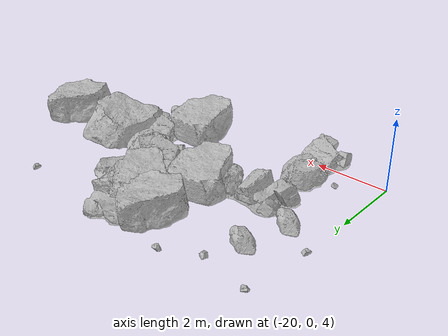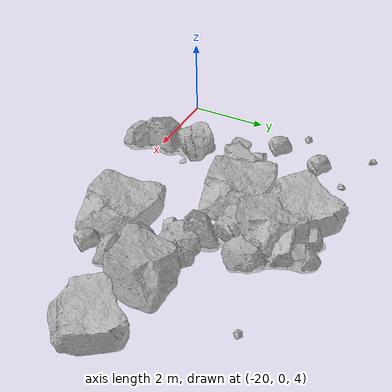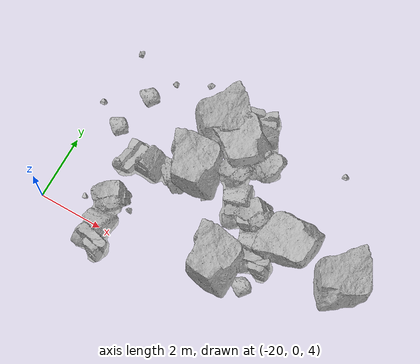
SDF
<sdf version="1.7">
 <world name="marsyard">
  <model name="Rock_3">
   <static>true</static>
   <pose>-12.5866 2.8986 4.0000 0.0000 0.0000 1.7044</pose>
   <link name="link">
    <visual name="visual">
     <geometry><mesh><uri>package://rock_generator/rocks_ws/rock_9/meshes/rock_9.stl</uri></mesh></geometry>
    </visual>
    <collision name="collision">
     <geometry><mesh><uri>package://rock_generator/rocks_ws/rock_9/meshes/rock_9.stl</uri></mesh></geometry>
    </collision>
   </link>
  </model>
  <model name="Rock_30">
   <static>true</static>
   <pose>-19.1105 3.0353 4.0000 0.0000 0.0000 0.2926</pose>
   <link name="link">
    <visual name="visual">
     <geometry><mesh><uri>package://rock_generator/rocks_ws/rock_3/meshes/rock_3.stl</uri></mesh></geometry>
    </visual>
    <collision name="collision">
     <geometry><mesh><uri>package://rock_generator/rocks_ws/rock_3/meshes/rock_3.stl</uri></mesh></geometry>
    </collision>
   </link>
  </model>
  <model name="Rock_70">
   <static>true</static>
   <pose>-16.5224 4.8071 4.0000 0.0000 0.0000 0.0338</pose>
   <link name="link">
    <visual name="visual">
     <geometry><mesh><uri>package://rock_generator/rocks_ws/rock_1/meshes/rock_1.stl</uri></mesh></geometry>
    </visual>
    <collision name="collision">
     <geometry><mesh><uri>package://rock_generator/rocks_ws/rock_1/meshes/rock_1.stl</uri></mesh></geometry>
    </collision>
   </link>
  </model>
  <model name="Rock_97">
   <static>true</static>
   <pose>-17.3370 5.5142 4.0000 0.0000 0.0000 1.4713</pose>
   <link name="link">
    <visual name="visual">
     <geometry><mesh><uri>package://rock_generator/rocks_ws/rock_9/meshes/rock_9.stl</uri></mesh></geometry>
    </visual>
    <collision name="collision">
     <geometry><mesh><uri>package://rock_generator/rocks_ws/rock_9/meshes/rock_9.stl</uri></mesh></geometry>
    </collision>
   </link>
  </model>
  <model name="Rock_132">
   <static>true</static>
   <pose>-15.0006 4.5964 4.0000 0.0000 0.0000 2.2051</pose>
   <link name="link">
    <visual name="visual">
     <geometry><mesh><uri>package://rock_generator/rocks_ws/rock_2/meshes/rock_2.stl</uri></mesh></geometry>
    </visual>
    <collision name="collision">
     <geometry><mesh><uri>package://rock_generator/rocks_ws/rock_2/meshes/rock_2.stl</uri></mesh></geometry>
    </collision>
   </link>
  </model>
  <model name="Rock_161">
   <static>true</static>
   <pose>-19.7115 5.3705 4.0000 0.0000 0.0000 2.2692</pose>
   <link name="link">
    <visual name="visual">
     <geometry><mesh><uri>package://rock_generator/rocks_ws/rock_9/meshes/rock_9.stl</uri></mesh></geometry>
    </visual>
    <collision name="collision">
     <geometry><mesh><uri>package://rock_generator/rocks_ws/rock_9/meshes/rock_9.stl</uri></mesh></geometry>
    </collision>
   </link>
  </model>
  <model name="Rock_168">
   <static>true</static>
   <pose>-18.0848 0.3081 4.0000 0.0000 0.0000 -1.4491</pose>
   <link name="link">
    <visual name="visual">
     <geometry><mesh><uri>package://rock_generator/rocks_ws/rock_2/meshes/rock_2.stl</uri></mesh></geometry>
    </visual>
    <collision name="collision">
     <geometry><mesh><uri>package://rock_generator/rocks_ws/rock_2/meshes/rock_2.stl</uri></mesh></geometry>
    </collision>
   </link>
  </model>
  <model name="Rock_174">
   <static>true</static>
   <pose>-15.7809 2.3304 4.0000 0.0000 0.0000 -2.2014</pose>
   <link name="link">
    <visual name="visual">
     <geometry><mesh><uri>package://rock_generator/rocks_ws/rock_7/meshes/rock_7.stl</uri></mesh></geometry>
    </visual>
    <collision name="collision">
     <geometry><mesh><uri>package://rock_generator/rocks_ws/rock_7/meshes/rock_7.stl</uri></mesh></geometry>
    </collision>
   </link>
  </model>
  <model name="Rock_194">
   <static>true</static>
   <pose>-12.4096 4.9861 4.0000 0.0000 0.0000 -1.5793</pose>
   <link name="link">
    <visual name="visual">
     <geometry><mesh><uri>package://rock_generator/rocks_ws/rock_9/meshes/rock_9.stl</uri></mesh></geometry>
    </visual>
    <collision name="collision">
     <geometry><mesh><uri>package://rock_generator/rocks_ws/rock_9/meshes/rock_9.stl</uri></mesh></geometry>
    </collision>
   </link>
  </model>
  <model name="Rock_195">
   <static>true</static>
   <pose>-14.7121 0.8049 4.0000 0.0000 0.0000 0.7222</pose>
   <link name="link">
    <visual name="visual">
     <geometry><mesh><uri>package://rock_generator/rocks_ws/rock_1/meshes/rock_1.stl</uri></mesh></geometry>
    </visual>
    <collision name="collision">
     <geometry><mesh><uri>package://rock_generator/rocks_ws/rock_1/meshes/rock_1.stl</uri></mesh></geometry>
    </collision>
   </link>
  </model>
  <model name="Rock_200">
   <static>true</static>
   <pose>-12.9343 2.1686 4.0000 0.0000 0.0000 2.2986</pose>
   <link name="link">
    <visual name="visual">
     <geometry><mesh><uri>package://rock_generator/rocks_ws/rock_1/meshes/rock_1.stl</uri></mesh></geometry>
    </visual>
    <collision name="collision">
     <geometry><mesh><uri>package://rock_generator/rocks_ws/rock_1/meshes/rock_1.stl</uri></mesh></geometry>
    </collision>
   </link>
  </model>
  <model name="Rock_243">
   <static>true</static>
   <pose>-18.7758 4.2894 4.0000 0.0000 0.0000 0.4729</pose>
   <link name="link">
    <visual name="visual">
     <geometry><mesh><uri>package://rock_generator/rocks_ws/rock_3/meshes/rock_3.stl</uri></mesh></geometry>
    </visual>
    <collision name="collision">
     <geometry><mesh><uri>package://rock_generator/rocks_ws/rock_3/meshes/rock_3.stl</uri></mesh></geometry>
    </collision>
   </link>
  </model>
  <model name="Rock_247">
   <static>true</static>
   <pose>-13.8934 1.9892 4.0000 0.0000 0.0000 -1.0896</pose>
   <link name="link">
    <visual name="visual">
     <geometry><mesh><uri>package://rock_generator/rocks_ws/rock_2/meshes/rock_2.stl</uri></mesh></geometry>
    </visual>
    <collision name="collision">
     <geometry><mesh><uri>package://rock_generator/rocks_ws/rock_2/meshes/rock_2.stl</uri></mesh></geometry>
    </collision>
   </link>
  </model>
  <model name="Rock_248">
   <static>true</static>
   <pose>-17.4506 2.4446 4.0000 0.0000 0.0000 -2.9725</pose>
   <link name="link">
    <visual name="visual">
     <geometry><mesh><uri>package://rock_generator/rocks_ws/rock_2/meshes/rock_2.stl</uri></mesh></geometry>
    </visual>
    <collision name="collision">
     <geometry><mesh><uri>package://rock_generator/rocks_ws/rock_2/meshes/rock_2.stl</uri></mesh></geometry>
    </collision>
   </link>
  </model>
  <model name="Rock_270">
   <static>true</static>
   <pose>-17.5227 0.8907 4.0000 0.0000 0.0000 -0.8298</pose>
   <link name="link">
    <visual name="visual">
     <geometry><mesh><uri>package://rock_generator/rocks_ws/rock_7/meshes/rock_7.stl</uri></mesh></geometry>
    </visual>
    <collision name="collision">
     <geometry><mesh><uri>package://rock_generator/rocks_ws/rock_7/meshes/rock_7.stl</uri></mesh></geometry>
    </collision>
   </link>
  </model>
  <model name="Rock_313">
   <static>true</static>
   <pose>-16.4443 3.8108 4.0000 0.0000 0.0000 2.0226</pose>
   <link name="link">
    <visual name="visual">
     <geometry><mesh><uri>package://rock_generator/rocks_ws/rock_7/meshes/rock_7.stl</uri></mesh></geometry>
    </visual>
    <collision name="collision">
     <geometry><mesh><uri>package://rock_generator/rocks_ws/rock_7/meshes/rock_7.stl</uri></mesh></geometry>
    </collision>
   </link>
  </model>
  <model name="Rock_315">
   <static>true</static>
   <pose>-14.9679 2.9554 4.0000 0.0000 0.0000 -0.9492</pose>
   <link name="link">
    <visual name="visual">
     <geometry><mesh><uri>package://rock_generator/rocks_ws/rock_2/meshes/rock_2.stl</uri></mesh></geometry>
    </visual>
    <collision name="collision">
     <geometry><mesh><uri>package://rock_generator/rocks_ws/rock_2/meshes/rock_2.stl</uri></mesh></geometry>
    </collision>
   </link>
  </model>
  <model name="Rock_352">
   <static>true</static>
   <pose>-18.3017 5.0274 4.0000 0.0000 0.0000 0.1916</pose>
   <link name="link">
    <visual name="visual">
     <geometry><mesh><uri>package://rock_generator/rocks_ws/rock_9/meshes/rock_9.stl</uri></mesh></geometry>
    </visual>
    <collision name="collision">
     <geometry><mesh><uri>package://rock_generator/rocks_ws/rock_9/meshes/rock_9.stl</uri></mesh></geometry>
    </collision>
   </link>
  </model>
  <model name="Rock_424">
   <static>true</static>
   <pose>-15.7210 4.2181 4.0000 0.0000 0.0000 1.5303</pose>
   <link name="link">
    <visual name="visual">
     <geometry><mesh><uri>package://rock_generator/rocks_ws/rock_1/meshes/rock_1.stl</uri></mesh></geometry>
    </visual>
    <collision name="collision">
     <geometry><mesh><uri>package://rock_generator/rocks_ws/rock_1/meshes/rock_1.stl</uri></mesh></geometry>
    </collision>
   </link>
  </model>
  <model name="Rock_450">
   <static>true</static>
   <pose>-16.6083 2.9934 4.0000 0.0000 0.0000 0.9651</pose>
   <link name="link">
    <visual name="visual">
     <geometry><mesh><uri>package://rock_generator/rocks_ws/rock_1/meshes/rock_1.stl</uri></mesh></geometry>
    </visual>
    <collision name="collision">
     <geometry><mesh><uri>package://rock_generator/rocks_ws/rock_1/meshes/rock_1.stl</uri></mesh></geometry>
    </collision>
   </link>
  </model>
  <model name="Rock_469">
   <static>true</static>
   <pose>-19.9409 3.4533 4.0000 0.0000 0.0000 -1.6216</pose>
   <link name="link">
    <visual name="visual">
     <geometry><mesh><uri>package://rock_generator/rocks_ws/rock_9/meshes/rock_9.stl</uri></mesh></geometry>
    </visual>
    <collision name="collision">
     <geometry><mesh><uri>package://rock_generator/rocks_ws/rock_9/meshes/rock_9.stl</uri></mesh></geometry>
    </collision>
   </link>
  </model>
  <model name="Rock_494">
   <static>true</static>
   <pose>-13.5060 0.5529 4.0000 0.0000 0.0000 0.4548</pose>
   <link name="link">
    <visual name="visual">
     <geometry><mesh><uri>package://rock_generator/rocks_ws/rock_3/meshes/rock_3.stl</uri></mesh></geometry>
    </visual>
    <collision name="collision">
     <geometry><mesh><uri>package://rock_generator/rocks_ws/rock_3/meshes/rock_3.stl</uri></mesh></geometry>
    </collision>
   </link>
  </model>
  <model name="Rock_498">
   <static>true</static>
   <pose>-18.8770 0.6210 4.0000 0.0000 0.0000 2.0326</pose>
   <link name="link">
    <visual name="visual">
     <geometry><mesh><uri>package://rock_generator/rocks_ws/rock_7/meshes/rock_7.stl</uri></mesh></geometry>
    </visual>
    <collision name="collision">
     <geometry><mesh><uri>package://rock_generator/rocks_ws/rock_7/meshes/rock_7.stl</uri></mesh></geometry>
    </collision>
   </link>
  </model>
  <model name="Rock_505">
   <static>true</static>
   <pose>-11.0710 2.2593 4.0000 0.0000 0.0000 -0.1870</pose>
   <link name="link">
    <visual name="visual">
     <geometry><mesh><uri>package://rock_generator/rocks_ws/rock_1/meshes/rock_1.stl</uri></mesh></geometry>
    </visual>
    <collision name="collision">
     <geometry><mesh><uri>package://rock_generator/rocks_ws/rock_1/meshes/rock_1.stl</uri></mesh></geometry>
    </collision>
   </link>
  </model>
 </world>
</sdf>
